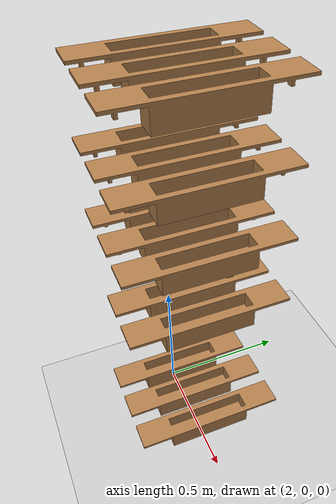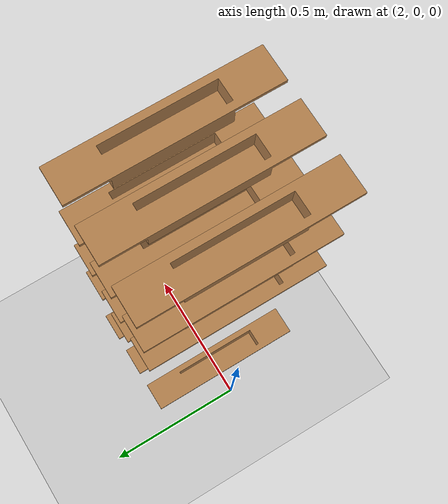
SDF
<sdf version="1.6">
 <world name="Test_world">
  <physics type="ode">
   <max_step_size>0.001</max_step_size>
   <real_time_factor>1.0</real_time_factor>
   <real_time_update_rate>1000</real_time_update_rate>
   <ode>
    <solver><type>quick</type><iters>150</iters><sor>1.3</sor></solver>
    <constraints>
     <cfm>0.0</cfm>
     <erp>0.2</erp>
     <contact_max_correcting_vel>100</contact_max_correcting_vel>
     <contact_surface_layer>0.001</contact_surface_layer>
    </constraints>
   </ode>
  </physics>
  <include><uri>model://sun</uri></include>
  <include><uri>model://ground_plane</uri></include>
  <model name="tray0">
   <static>false</static>
   <pose>2.1 0.0 0.165 0 0 1.5707963267948966</pose>
   <link name="link">
    <inertial>
     <mass>0.2</mass>
     <inertia>
      <ixx>0.00113</ixx>
      <ixy>0.0</ixy>
      <ixz>0.0</ixz>
      <iyy>0.01718</iyy>
      <iyz>0.0</iyz>
      <izz>0.01854</izz>
     </inertia>
    </inertial>
    <visual name="visual">
     <geometry><mesh><uri>model://aidal_moveit_config/meshes/tray.stl</uri></mesh></geometry>
     <material><script><name>Gazebo/Wood</name></script></material>
    </visual>
    <collision name="collision">
     <geometry><mesh><uri>model://aidal_moveit_config/meshes/tray.stl</uri></mesh></geometry>
     <surface>
      <friction><ode><mu>0.8</mu><mu2>0.8</mu2></ode></friction>
      <contact><ode><kp>1e5</kp><kd>1.0</kd><max_vel>0.1</max_vel><min_depth>0.001</min_depth></ode></contact>
     </surface>
    </collision>
   </link>
  </model>
  <model name="tray0-1">
   <static>true</static>
   <pose>2.25 0.0 0.1644 0 0 1.5707963267948966</pose>
   <link name="link">
    <visual name="visual">
     <geometry><mesh><uri>model://aidal_moveit_config/meshes/tray.stl</uri></mesh></geometry>
     <material><script><name>Gazebo/Wood</name></script></material>
    </visual>
   </link>
  </model>
  <model name="tray0-2">
   <static>true</static>
   <pose>2.4 0.0 0.1644 0 0 1.5707963267948966</pose>
   <link name="link">
    <visual name="visual">
     <geometry><mesh><uri>model://aidal_moveit_config/meshes/tray.stl</uri></mesh></geometry>
     <material><script><name>Gazebo/Wood</name></script></material>
    </visual>
   </link>
  </model>
  <model name="tray1-1">
   <static>true</static>
   <pose>2.25 0.0 0.7195 0 0 1.5707963267948966</pose>
   <link name="link">
    <visual name="visual">
     <geometry><mesh><uri>model://aidal_moveit_config/meshes/tray.stl</uri></mesh></geometry>
     <material><script><name>Gazebo/Wood</name></script></material>
    </visual>
   </link>
  </model>
  <model name="tray1-2">
   <static>true</static>
   <pose>2.4 0.0 0.7195 0 0 1.5707963267948966</pose>
   <link name="link">
    <visual name="visual">
     <geometry><mesh><uri>model://aidal_moveit_config/meshes/tray.stl</uri></mesh></geometry>
     <material><script><name>Gazebo/Wood</name></script></material>
    </visual>
   </link>
  </model>
  <model name="tray2">
   <static>false</static>
   <pose>2.1 0.0 0.9688 0 0 1.5707963267948966</pose>
   <link name="link">
    <inertial>
     <mass>0.2</mass>
     <inertia>
      <ixx>0.00113</ixx>
      <ixy>0.0</ixy>
      <ixz>0.0</ixz>
      <iyy>0.01718</iyy>
      <iyz>0.0</iyz>
      <izz>0.01854</izz>
     </inertia>
    </inertial>
    <visual name="visual">
     <geometry><mesh><uri>model://aidal_moveit_config/meshes/tray.stl</uri></mesh></geometry>
     <material><script><name>Gazebo/Wood</name></script></material>
    </visual>
    <collision name="collision">
     <geometry><mesh><uri>model://aidal_moveit_config/meshes/tray.stl</uri></mesh></geometry>
     <surface>
      <friction><ode><mu>0.8</mu><mu2>0.8</mu2></ode></friction>
      <contact><ode><kp>1e5</kp><kd>1.0</kd><max_vel>0.1</max_vel><min_depth>0.001</min_depth></ode></contact>
     </surface>
    </collision>
   </link>
  </model>
  <model name="tray2-1">
   <static>true</static>
   <pose>2.25 0.0 0.9688 0 0 1.5707963267948966</pose>
   <link name="link">
    <visual name="visual">
     <geometry><mesh><uri>model://aidal_moveit_config/meshes/tray.stl</uri></mesh></geometry>
     <material><script><name>Gazebo/Wood</name></script></material>
    </visual>
   </link>
  </model>
  <model name="tray2-2">
   <static>true</static>
   <pose>2.4 0.0 0.9688 0 0 1.5707963267948966</pose>
   <link name="link">
    <visual name="visual">
     <geometry><mesh><uri>model://aidal_moveit_config/meshes/tray.stl</uri></mesh></geometry>
     <material><script><name>Gazebo/Wood</name></script></material>
    </visual>
   </link>
  </model>
  <model name="tray3">
   <static>false</static>
   <pose>2.1 0.0 1.219 0 0 1.5707963267948966</pose>
   <link name="link">
    <inertial>
     <mass>0.2</mass>
     <inertia>
      <ixx>0.00113</ixx>
      <ixy>0.0</ixy>
      <ixz>0.0</ixz>
      <iyy>0.01718</iyy>
      <iyz>0.0</iyz>
      <izz>0.01854</izz>
     </inertia>
    </inertial>
    <visual name="visual">
     <geometry><mesh><uri>model://aidal_moveit_config/meshes/tray.stl</uri></mesh></geometry>
     <material><script><name>Gazebo/Wood</name></script></material>
    </visual>
    <collision name="collision">
     <geometry><mesh><uri>model://aidal_moveit_config/meshes/tray.stl</uri></mesh></geometry>
     <surface>
      <friction><ode><mu>0.8</mu><mu2>0.8</mu2></ode></friction>
      <contact><ode><kp>1e5</kp><kd>1.0</kd><max_vel>0.1</max_vel><min_depth>0.001</min_depth></ode></contact>
     </surface>
    </collision>
   </link>
  </model>
  <model name="tray3-1">
   <static>true</static>
   <pose>2.25 0.0 1.219 0 0 1.5707963267948966</pose>
   <link name="link">
    <visual name="visual">
     <geometry><mesh><uri>model://aidal_moveit_config/meshes/tray.stl</uri></mesh></geometry>
     <material><script><name>Gazebo/Wood</name></script></material>
    </visual>
   </link>
  </model>
  <model name="tray3-2">
   <static>true</static>
   <pose>2.4 0.0 1.219 0 0 1.5707963267948966</pose>
   <link name="link">
    <visual name="visual">
     <geometry><mesh><uri>model://aidal_moveit_config/meshes/tray.stl</uri></mesh></geometry>
     <material><script><name>Gazebo/Wood</name></script></material>
    </visual>
   </link>
  </model>
  <model name="tray4">
   <static>false</static>
   <pose>2.1 0.0 1.470 0 0 1.5707963267948966</pose>
   <link name="link">
    <inertial>
     <mass>0.2</mass>
     <inertia>
      <ixx>0.00113</ixx>
      <ixy>0.0</ixy>
      <ixz>0.0</ixz>
      <iyy>0.01718</iyy>
      <iyz>0.0</iyz>
      <izz>0.01854</izz>
     </inertia>
    </inertial>
    <visual name="visual">
     <geometry><mesh><uri>model://aidal_moveit_config/meshes/tray.stl</uri></mesh></geometry>
     <material><script><name>Gazebo/Wood</name></script></material>
    </visual>
    <collision name="collision">
     <geometry><mesh><uri>model://aidal_moveit_config/meshes/tray.stl</uri></mesh></geometry>
     <surface>
      <friction><ode><mu>0.8</mu><mu2>0.8</mu2></ode></friction>
      <contact><ode><kp>1e5</kp><kd>1.0</kd><max_vel>0.1</max_vel><min_depth>0.001</min_depth></ode></contact>
     </surface>
    </collision>
   </link>
  </model>
  <model name="tray4-1">
   <static>true</static>
   <pose>2.25 0.0 1.470 0 0 1.5707963267948966</pose>
   <link name="link">
    <visual name="visual">
     <geometry><mesh><uri>model://aidal_moveit_config/meshes/tray.stl</uri></mesh></geometry>
     <material><script><name>Gazebo/Wood</name></script></material>
    </visual>
   </link>
  </model>
  <model name="tray4-2">
   <static>true</static>
   <pose>2.4 0.0 1.470 0 0 1.5707963267948966</pose>
   <link name="link">
    <visual name="visual">
     <geometry><mesh><uri>model://aidal_moveit_config/meshes/tray.stl</uri></mesh></geometry>
     <material><script><name>Gazebo/Wood</name></script></material>
    </visual>
   </link>
  </model>
 </world>
</sdf>
